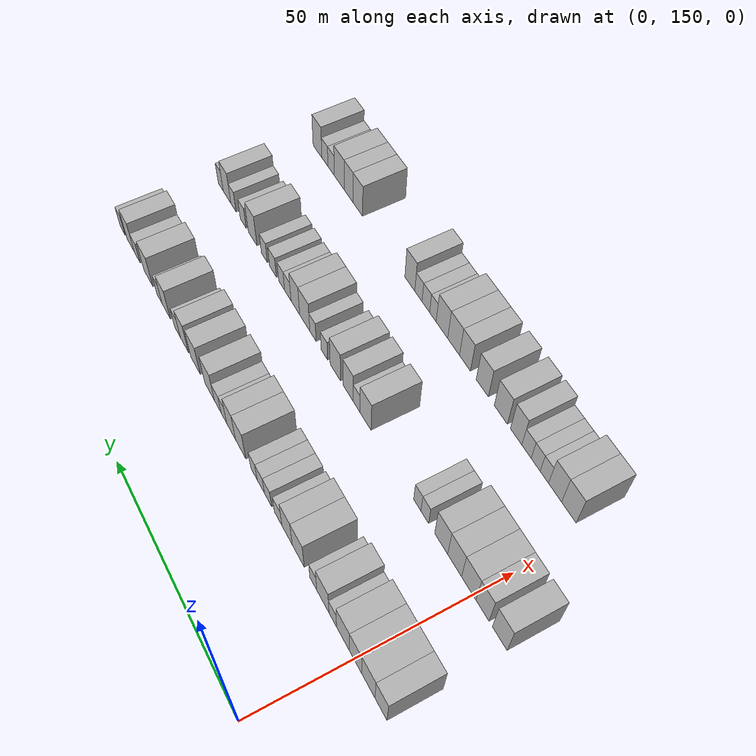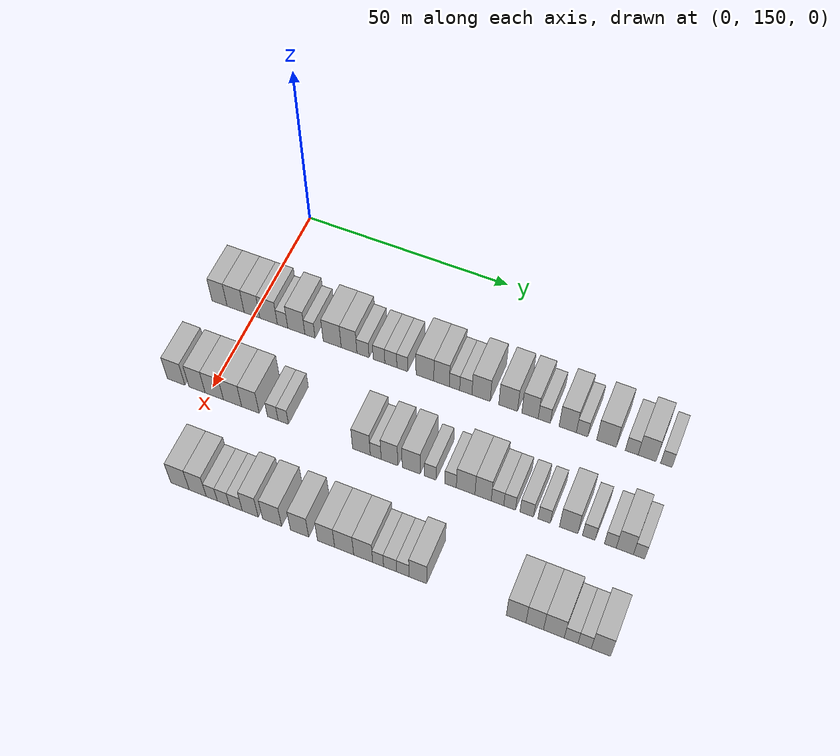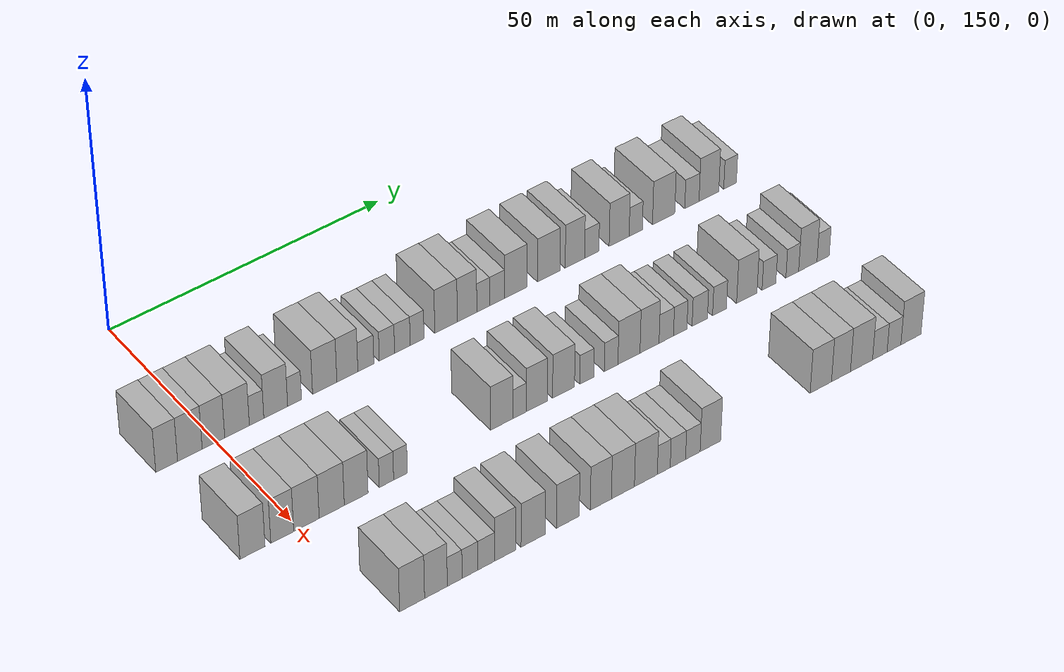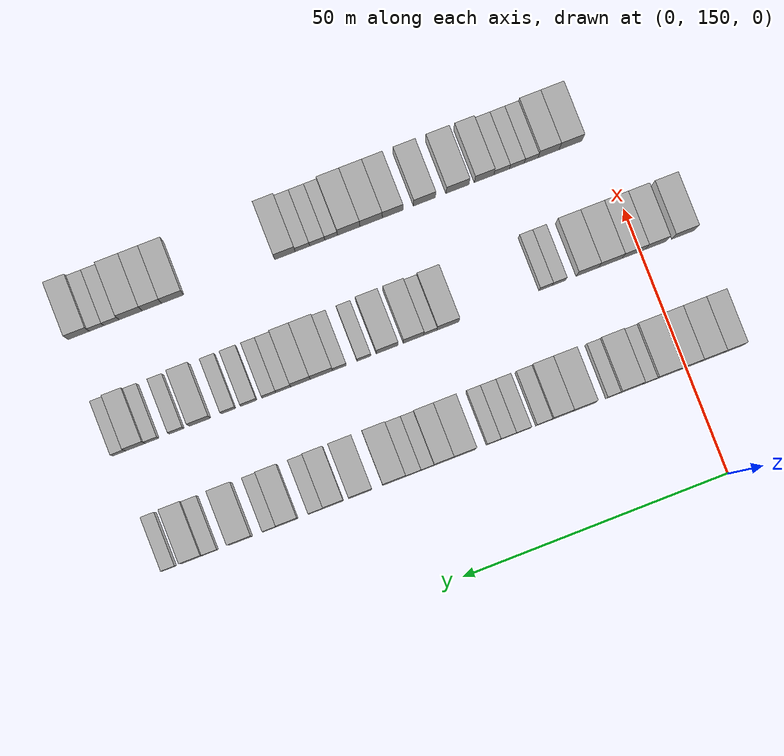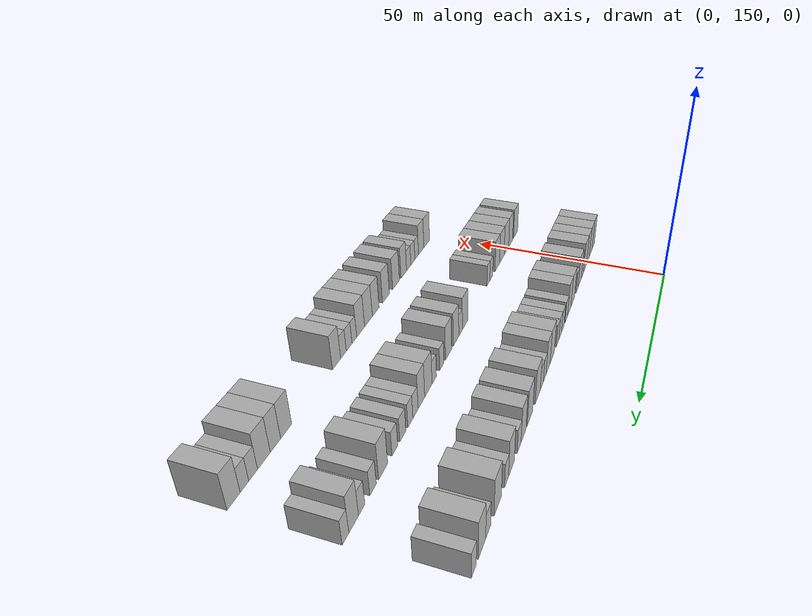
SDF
<sdf version="1.6">
 <world name="default">
  <model name="building_99">
   <static>1</static>
   <pose>25.0000 141.2825 0 0.000000 0.000000 0.000000</pose>
   <link name="link">
    <pose>0 0 4.50 0 0 0</pose>
    <collision name="collision"><geometry><box><size>10.0000 3.8132 9.0000</size></box></geometry></collision>
    <visual name="visual">
     <cast_shadows>0</cast_shadows>
     <geometry><box><size>10.0000 3.8132 9.0000</size></box></geometry>
     <material>
      <script>
       <uri>model://HANNAS_wall/materials/scripts</uri>
       <uri>model://HANNAS_wall/materials/textures</uri>
       <name>vrc/HANNAS_wall</name>
      </script>
     </material>
    </visual>
   </link>
  </model>
  <model name="building_100">
   <static>1</static>
   <pose>25.0000 145.3525 0 0.000000 0.000000 0.000000</pose>
   <link name="link">
    <pose>0 0 4.50 0 0 0</pose>
    <collision name="collision"><geometry><box><size>10.0000 4.3269 9.0000</size></box></geometry></collision>
    <visual name="visual">
     <cast_shadows>0</cast_shadows>
     <geometry><box><size>10.0000 4.3269 9.0000</size></box></geometry>
     <material>
      <script>
       <uri>model://HANNAS_wall/materials/scripts</uri>
       <uri>model://HANNAS_wall/materials/textures</uri>
       <name>vrc/HANNAS_wall</name>
      </script>
     </material>
    </visual>
   </link>
  </model>
  <model name="building_101">
   <static>1</static>
   <pose>25.0000 149.5108 0 0.000000 0.000000 0.000000</pose>
   <link name="link">
    <pose>0 0 4.50 0 0 0</pose>
    <collision name="collision"><geometry><box><size>10.0000 3.9896 9.0000</size></box></geometry></collision>
    <visual name="visual">
     <cast_shadows>0</cast_shadows>
     <geometry><box><size>10.0000 3.9896 9.0000</size></box></geometry>
     <material>
      <script>
       <uri>model://HANNAS_wall/materials/scripts</uri>
       <uri>model://HANNAS_wall/materials/textures</uri>
       <name>vrc/HANNAS_wall</name>
      </script>
     </material>
    </visual>
   </link>
  </model>
  <model name="building_102">
   <static>1</static>
   <pose>25.0000 153.6979 0 0.000000 0.000000 0.000000</pose>
   <link name="link">
    <pose>0 0 4.50 0 0 0</pose>
    <collision name="collision"><geometry><box><size>10.0000 4.3847 9.0000</size></box></geometry></collision>
    <visual name="visual">
     <cast_shadows>0</cast_shadows>
     <geometry><box><size>10.0000 4.3847 9.0000</size></box></geometry>
     <material>
      <script>
       <uri>model://HANNAS_wall/materials/scripts</uri>
       <uri>model://HANNAS_wall/materials/textures</uri>
       <name>vrc/HANNAS_wall</name>
      </script>
     </material>
    </visual>
   </link>
  </model>
  <model name="building_103">
   <static>1</static>
   <pose>25.0000 157.1865 0 0.000000 0.000000 0.000000</pose>
   <link name="link">
    <pose>0 0 3.00 0 0 0</pose>
    <collision name="collision"><geometry><box><size>10.0000 2.5923 6.0000</size></box></geometry></collision>
    <visual name="visual">
     <cast_shadows>0</cast_shadows>
     <geometry><box><size>10.0000 2.5923 6.0000</size></box></geometry>
     <material>
      <script>
       <uri>model://HANNAS_wall/materials/scripts</uri>
       <uri>model://HANNAS_wall/materials/textures</uri>
       <name>vrc/HANNAS_wall</name>
      </script>
     </material>
    </visual>
   </link>
  </model>
  <model name="building_104">
   <static>1</static>
   <pose>25.0000 160.6217 0 0.000000 0.000000 0.000000</pose>
   <link name="link">
    <pose>0 0 4.50 0 0 0</pose>
    <collision name="collision"><geometry><box><size>10.0000 4.2781 9.0000</size></box></geometry></collision>
    <visual name="visual">
     <cast_shadows>0</cast_shadows>
     <geometry><box><size>10.0000 4.2781 9.0000</size></box></geometry>
     <material>
      <script>
       <uri>model://HANNAS_wall/materials/scripts</uri>
       <uri>model://HANNAS_wall/materials/textures</uri>
       <name>vrc/HANNAS_wall</name>
      </script>
     </material>
    </visual>
   </link>
  </model>
  <model name="building_105">
   <static>1</static>
   <pose>25.0000 164.0125 0 0.000000 0.000000 0.000000</pose>
   <link name="link">
    <pose>0 0 3.00 0 0 0</pose>
    <collision name="collision"><geometry><box><size>10.0000 2.5037 6.0000</size></box></geometry></collision>
    <visual name="visual">
     <cast_shadows>0</cast_shadows>
     <geometry><box><size>10.0000 2.5037 6.0000</size></box></geometry>
     <material>
      <script>
       <uri>model://HANNAS_wall/materials/scripts</uri>
       <uri>model://HANNAS_wall/materials/textures</uri>
       <name>vrc/HANNAS_wall</name>
      </script>
     </material>
    </visual>
   </link>
  </model>
  <model name="building_106">
   <static>1</static>
   <pose>25.0000 169.4758 0 0.000000 0.000000 0.000000</pose>
   <link name="link">
    <pose>0 0 4.50 0 0 0</pose>
    <collision name="collision"><geometry><box><size>10.0000 4.4229 9.0000</size></box></geometry></collision>
    <visual name="visual">
     <cast_shadows>0</cast_shadows>
     <geometry><box><size>10.0000 4.4229 9.0000</size></box></geometry>
     <material>
      <script>
       <uri>model://HANNAS_wall/materials/scripts</uri>
       <uri>model://HANNAS_wall/materials/textures</uri>
       <name>vrc/HANNAS_wall</name>
      </script>
     </material>
    </visual>
   </link>
  </model>
  <model name="building_107">
   <static>1</static>
   <pose>25.0000 173.6117 0 0.000000 0.000000 0.000000</pose>
   <link name="link">
    <pose>0 0 4.50 0 0 0</pose>
    <collision name="collision"><geometry><box><size>10.0000 3.8489 9.0000</size></box></geometry></collision>
    <visual name="visual">
     <cast_shadows>0</cast_shadows>
     <geometry><box><size>10.0000 3.8489 9.0000</size></box></geometry>
     <material>
      <script>
       <uri>model://HANNAS_wall/materials/scripts</uri>
       <uri>model://HANNAS_wall/materials/textures</uri>
       <name>vrc/HANNAS_wall</name>
      </script>
     </material>
    </visual>
   </link>
  </model>
  <model name="building_108">
   <static>1</static>
   <pose>25.0000 177.0077 0 0.000000 0.000000 0.000000</pose>
   <link name="link">
    <pose>0 0 3.00 0 0 0</pose>
    <collision name="collision"><geometry><box><size>10.0000 2.9430 6.0000</size></box></geometry></collision>
    <visual name="visual">
     <cast_shadows>0</cast_shadows>
     <geometry><box><size>10.0000 2.9430 6.0000</size></box></geometry>
     <material>
      <script>
       <uri>model://HANNAS_wall/materials/scripts</uri>
       <uri>model://HANNAS_wall/materials/textures</uri>
       <name>vrc/HANNAS_wall</name>
      </script>
     </material>
    </visual>
   </link>
  </model>
  <model name="building_109">
   <static>1</static>
   <pose>25.0000 180.8945 0 0.000000 0.000000 0.000000</pose>
   <link name="link">
    <pose>0 0 3.00 0 0 0</pose>
    <collision name="collision"><geometry><box><size>10.0000 2.8308 6.0000</size></box></geometry></collision>
    <visual name="visual">
     <cast_shadows>0</cast_shadows>
     <geometry><box><size>10.0000 2.8308 6.0000</size></box></geometry>
     <material>
      <script>
       <uri>model://HANNAS_wall/materials/scripts</uri>
       <uri>model://HANNAS_wall/materials/textures</uri>
       <name>vrc/HANNAS_wall</name>
      </script>
     </material>
    </visual>
   </link>
  </model>
  <model name="building_110">
   <static>1</static>
   <pose>25.0000 183.7562 0 0.000000 0.000000 0.000000</pose>
   <link name="link">
    <pose>0 0 3.00 0 0 0</pose>
    <collision name="collision"><geometry><box><size>10.0000 2.8926 6.0000</size></box></geometry></collision>
    <visual name="visual">
     <cast_shadows>0</cast_shadows>
     <geometry><box><size>10.0000 2.8926 6.0000</size></box></geometry>
     <material>
      <script>
       <uri>model://HANNAS_wall/materials/scripts</uri>
       <uri>model://HANNAS_wall/materials/textures</uri>
       <name>vrc/HANNAS_wall</name>
      </script>
     </material>
    </visual>
   </link>
  </model>
  <model name="building_111">
   <static>1</static>
   <pose>25.0000 186.4954 0 0.000000 0.000000 0.000000</pose>
   <link name="link">
    <pose>0 0 3.00 0 0 0</pose>
    <collision name="collision"><geometry><box><size>10.0000 2.5856 6.0000</size></box></geometry></collision>
    <visual name="visual">
     <cast_shadows>0</cast_shadows>
     <geometry><box><size>10.0000 2.5856 6.0000</size></box></geometry>
     <material>
      <script>
       <uri>model://HANNAS_wall/materials/scripts</uri>
       <uri>model://HANNAS_wall/materials/textures</uri>
       <name>vrc/HANNAS_wall</name>
      </script>
     </material>
    </visual>
   </link>
  </model>
  <model name="building_112">
   <static>1</static>
   <pose>25.0000 191.9069 0 0.000000 0.000000 0.000000</pose>
   <link name="link">
    <pose>0 0 4.50 0 0 0</pose>
    <collision name="collision"><geometry><box><size>10.0000 4.2375 9.0000</size></box></geometry></collision>
    <visual name="visual">
     <cast_shadows>0</cast_shadows>
     <geometry><box><size>10.0000 4.2375 9.0000</size></box></geometry>
     <material>
      <script>
       <uri>model://HANNAS_wall/materials/scripts</uri>
       <uri>model://HANNAS_wall/materials/textures</uri>
       <name>vrc/HANNAS_wall</name>
      </script>
     </material>
    </visual>
   </link>
  </model>
  <model name="building_113">
   <static>1</static>
   <pose>25.0000 195.8690 0 0.000000 0.000000 0.000000</pose>
   <link name="link">
    <pose>0 0 4.50 0 0 0</pose>
    <collision name="collision"><geometry><box><size>10.0000 3.6868 9.0000</size></box></geometry></collision>
    <visual name="visual">
     <cast_shadows>0</cast_shadows>
     <geometry><box><size>10.0000 3.6868 9.0000</size></box></geometry>
     <material>
      <script>
       <uri>model://HANNAS_wall/materials/scripts</uri>
       <uri>model://HANNAS_wall/materials/textures</uri>
       <name>vrc/HANNAS_wall</name>
      </script>
     </material>
    </visual>
   </link>
  </model>
  <model name="building_114">
   <static>1</static>
   <pose>25.0000 198.9291 0 0.000000 0.000000 0.000000</pose>
   <link name="link">
    <pose>0 0 3.00 0 0 0</pose>
    <collision name="collision"><geometry><box><size>10.0000 2.4334 6.0000</size></box></geometry></collision>
    <visual name="visual">
     <cast_shadows>0</cast_shadows>
     <geometry><box><size>10.0000 2.4334 6.0000</size></box></geometry>
     <material>
      <script>
       <uri>model://HANNAS_wall/materials/scripts</uri>
       <uri>model://HANNAS_wall/materials/textures</uri>
       <name>vrc/HANNAS_wall</name>
      </script>
     </material>
    </visual>
   </link>
  </model>
  <model name="building_115">
   <static>1</static>
   <pose>25.0000 201.5881 0 0.000000 0.000000 0.000000</pose>
   <link name="link">
    <pose>0 0 3.00 0 0 0</pose>
    <collision name="collision"><geometry><box><size>10.0000 2.8847 6.0000</size></box></geometry></collision>
    <visual name="visual">
     <cast_shadows>0</cast_shadows>
     <geometry><box><size>10.0000 2.8847 6.0000</size></box></geometry>
     <material>
      <script>
       <uri>model://HANNAS_wall/materials/scripts</uri>
       <uri>model://HANNAS_wall/materials/textures</uri>
       <name>vrc/HANNAS_wall</name>
      </script>
     </material>
    </visual>
   </link>
  </model>
  <model name="building_116">
   <static>1</static>
   <pose>25.0000 205.1700 0 0.000000 0.000000 0.000000</pose>
   <link name="link">
    <pose>0 0 4.50 0 0 0</pose>
    <collision name="collision"><geometry><box><size>10.0000 4.2790 9.0000</size></box></geometry></collision>
    <visual name="visual">
     <cast_shadows>0</cast_shadows>
     <geometry><box><size>10.0000 4.2790 9.0000</size></box></geometry>
     <material>
      <script>
       <uri>model://HANNAS_wall/materials/scripts</uri>
       <uri>model://HANNAS_wall/materials/textures</uri>
       <name>vrc/HANNAS_wall</name>
      </script>
     </material>
    </visual>
   </link>
  </model>
  <model name="building_117">
   <static>1</static>
   <pose>25.0000 211.4765 0 0.000000 0.000000 0.000000</pose>
   <link name="link">
    <pose>0 0 4.50 0 0 0</pose>
    <collision name="collision"><geometry><box><size>10.0000 4.3340 9.0000</size></box></geometry></collision>
    <visual name="visual">
     <cast_shadows>0</cast_shadows>
     <geometry><box><size>10.0000 4.3340 9.0000</size></box></geometry>
     <material>
      <script>
       <uri>model://HANNAS_wall/materials/scripts</uri>
       <uri>model://HANNAS_wall/materials/textures</uri>
       <name>vrc/HANNAS_wall</name>
      </script>
     </material>
    </visual>
   </link>
  </model>
  <model name="building_118">
   <static>1</static>
   <pose>25.0000 216.5295 0 0.000000 0.000000 0.000000</pose>
   <link name="link">
    <pose>0 0 4.50 0 0 0</pose>
    <collision name="collision"><geometry><box><size>10.0000 3.7720 9.0000</size></box></geometry></collision>
    <visual name="visual">
     <cast_shadows>0</cast_shadows>
     <geometry><box><size>10.0000 3.7720 9.0000</size></box></geometry>
     <material>
      <script>
       <uri>model://HANNAS_wall/materials/scripts</uri>
       <uri>model://HANNAS_wall/materials/textures</uri>
       <name>vrc/HANNAS_wall</name>
      </script>
     </material>
    </visual>
   </link>
  </model>
  <model name="building_119">
   <static>1</static>
   <pose>25.0000 219.8088 0 0.000000 0.000000 0.000000</pose>
   <link name="link">
    <pose>0 0 3.00 0 0 0</pose>
    <collision name="collision"><geometry><box><size>10.0000 2.7865 6.0000</size></box></geometry></collision>
    <visual name="visual">
     <cast_shadows>0</cast_shadows>
     <geometry><box><size>10.0000 2.7865 6.0000</size></box></geometry>
     <material>
      <script>
       <uri>model://HANNAS_wall/materials/scripts</uri>
       <uri>model://HANNAS_wall/materials/textures</uri>
       <name>vrc/HANNAS_wall</name>
      </script>
     </material>
    </visual>
   </link>
  </model>
  <model name="building_120">
   <static>1</static>
   <pose>25.0000 225.1686 0 0.000000 0.000000 0.000000</pose>
   <link name="link">
    <pose>0 0 4.50 0 0 0</pose>
    <collision name="collision"><geometry><box><size>10.0000 3.9332 9.0000</size></box></geometry></collision>
    <visual name="visual">
     <cast_shadows>0</cast_shadows>
     <geometry><box><size>10.0000 3.9332 9.0000</size></box></geometry>
     <material>
      <script>
       <uri>model://HANNAS_wall/materials/scripts</uri>
       <uri>model://HANNAS_wall/materials/textures</uri>
       <name>vrc/HANNAS_wall</name>
      </script>
     </material>
    </visual>
   </link>
  </model>
  <model name="building_121">
   <static>1</static>
   <pose>25.0000 228.4403 0 0.000000 0.000000 0.000000</pose>
   <link name="link">
    <pose>0 0 3.00 0 0 0</pose>
    <collision name="collision"><geometry><box><size>10.0000 2.6103 6.0000</size></box></geometry></collision>
    <visual name="visual">
     <cast_shadows>0</cast_shadows>
     <geometry><box><size>10.0000 2.6103 6.0000</size></box></geometry>
     <material>
      <script>
       <uri>model://HANNAS_wall/materials/scripts</uri>
       <uri>model://HANNAS_wall/materials/textures</uri>
       <name>vrc/HANNAS_wall</name>
      </script>
     </material>
    </visual>
   </link>
  </model>
  <model name="building_122">
   <static>1</static>
   <pose>25.0000 233.9627 0 0.000000 0.000000 0.000000</pose>
   <link name="link">
    <pose>0 0 4.50 0 0 0</pose>
    <collision name="collision"><geometry><box><size>10.0000 4.4344 9.0000</size></box></geometry></collision>
    <visual name="visual">
     <cast_shadows>0</cast_shadows>
     <geometry><box><size>10.0000 4.4344 9.0000</size></box></geometry>
     <material>
      <script>
       <uri>model://HANNAS_wall/materials/scripts</uri>
       <uri>model://HANNAS_wall/materials/textures</uri>
       <name>vrc/HANNAS_wall</name>
      </script>
     </material>
    </visual>
   </link>
  </model>
  <model name="building_123">
   <static>1</static>
   <pose>25.0000 239.6098 0 0.000000 0.000000 0.000000</pose>
   <link name="link">
    <pose>0 0 3.00 0 0 0</pose>
    <collision name="collision"><geometry><box><size>10.0000 2.8599 6.0000</size></box></geometry></collision>
    <visual name="visual">
     <cast_shadows>0</cast_shadows>
     <geometry><box><size>10.0000 2.8599 6.0000</size></box></geometry>
     <material>
      <script>
       <uri>model://HANNAS_wall/materials/scripts</uri>
       <uri>model://HANNAS_wall/materials/textures</uri>
       <name>vrc/HANNAS_wall</name>
      </script>
     </material>
    </visual>
   </link>
  </model>
  <model name="building_124">
   <static>1</static>
   <pose>25.0000 243.0283 0 0.000000 0.000000 0.000000</pose>
   <link name="link">
    <pose>0 0 4.50 0 0 0</pose>
    <collision name="collision"><geometry><box><size>10.0000 3.9770 9.0000</size></box></geometry></collision>
    <visual name="visual">
     <cast_shadows>0</cast_shadows>
     <geometry><box><size>10.0000 3.9770 9.0000</size></box></geometry>
     <material>
      <script>
       <uri>model://HANNAS_wall/materials/scripts</uri>
       <uri>model://HANNAS_wall/materials/textures</uri>
       <name>vrc/HANNAS_wall</name>
      </script>
     </material>
    </visual>
   </link>
  </model>
  <model name="building_125">
   <static>1</static>
   <pose>25.0000 247.2983 0 0.000000 0.000000 0.000000</pose>
   <link name="link">
    <pose>0 0 3.00 0 0 0</pose>
    <collision name="collision"><geometry><box><size>10.0000 2.5631 6.0000</size></box></geometry></collision>
    <visual name="visual">
     <cast_shadows>0</cast_shadows>
     <geometry><box><size>10.0000 2.5631 6.0000</size></box></geometry>
     <material>
      <script>
       <uri>model://HANNAS_wall/materials/scripts</uri>
       <uri>model://HANNAS_wall/materials/textures</uri>
       <name>vrc/HANNAS_wall</name>
      </script>
     </material>
    </visual>
   </link>
  </model>
  <model name="building_216">
   <static>1</static>
   <pose>47.0000 141.8956 0 0.000000 0.000000 0.000000</pose>
   <link name="link">
    <pose>0 0 4.50 0 0 0</pose>
    <collision name="collision"><geometry><box><size>10.0000 4.3560 9.0000</size></box></geometry></collision>
    <visual name="visual">
     <cast_shadows>0</cast_shadows>
     <geometry><box><size>10.0000 4.3560 9.0000</size></box></geometry>
     <material>
      <script>
       <uri>model://HANNAS_wall/materials/scripts</uri>
       <uri>model://HANNAS_wall/materials/textures</uri>
       <name>vrc/HANNAS_wall</name>
      </script>
     </material>
    </visual>
   </link>
  </model>
  <model name="building_217">
   <static>1</static>
   <pose>47.0000 147.0660 0 0.000000 0.000000 0.000000</pose>
   <link name="link">
    <pose>0 0 4.50 0 0 0</pose>
    <collision name="collision"><geometry><box><size>10.0000 3.9848 9.0000</size></box></geometry></collision>
    <visual name="visual">
     <cast_shadows>0</cast_shadows>
     <geometry><box><size>10.0000 3.9848 9.0000</size></box></geometry>
     <material>
      <script>
       <uri>model://HANNAS_wall/materials/scripts</uri>
       <uri>model://HANNAS_wall/materials/textures</uri>
       <name>vrc/HANNAS_wall</name>
      </script>
     </material>
    </visual>
   </link>
  </model>
  <model name="building_218">
   <static>1</static>
   <pose>47.0000 151.2968 0 0.000000 0.000000 0.000000</pose>
   <link name="link">
    <pose>0 0 4.50 0 0 0</pose>
    <collision name="collision"><geometry><box><size>10.0000 4.4767 9.0000</size></box></geometry></collision>
    <visual name="visual">
     <cast_shadows>0</cast_shadows>
     <geometry><box><size>10.0000 4.4767 9.0000</size></box></geometry>
     <material>
      <script>
       <uri>model://HANNAS_wall/materials/scripts</uri>
       <uri>model://HANNAS_wall/materials/textures</uri>
       <name>vrc/HANNAS_wall</name>
      </script>
     </material>
    </visual>
   </link>
  </model>
  <model name="building_219">
   <static>1</static>
   <pose>47.0000 155.7548 0 0.000000 0.000000 0.000000</pose>
   <link name="link">
    <pose>0 0 4.50 0 0 0</pose>
    <collision name="collision"><geometry><box><size>10.0000 4.4392 9.0000</size></box></geometry></collision>
    <visual name="visual">
     <cast_shadows>0</cast_shadows>
     <geometry><box><size>10.0000 4.4392 9.0000</size></box></geometry>
     <material>
      <script>
       <uri>model://HANNAS_wall/materials/scripts</uri>
       <uri>model://HANNAS_wall/materials/textures</uri>
       <name>vrc/HANNAS_wall</name>
      </script>
     </material>
    </visual>
   </link>
  </model>
  <model name="building_220">
   <static>1</static>
   <pose>47.0000 160.0873 0 0.000000 0.000000 0.000000</pose>
   <link name="link">
    <pose>0 0 4.50 0 0 0</pose>
    <collision name="collision"><geometry><box><size>10.0000 4.2258 9.0000</size></box></geometry></collision>
    <visual name="visual">
     <cast_shadows>0</cast_shadows>
     <geometry><box><size>10.0000 4.2258 9.0000</size></box></geometry>
     <material>
      <script>
       <uri>model://HANNAS_wall/materials/scripts</uri>
       <uri>model://HANNAS_wall/materials/textures</uri>
       <name>vrc/HANNAS_wall</name>
      </script>
     </material>
    </visual>
   </link>
  </model>
  <model name="building_221">
   <static>1</static>
   <pose>47.0000 165.4846 0 0.000000 0.000000 0.000000</pose>
   <link name="link">
    <pose>0 0 3.00 0 0 0</pose>
    <collision name="collision"><geometry><box><size>10.0000 2.5687 6.0000</size></box></geometry></collision>
    <visual name="visual">
     <cast_shadows>0</cast_shadows>
     <geometry><box><size>10.0000 2.5687 6.0000</size></box></geometry>
     <material>
      <script>
       <uri>model://HANNAS_wall/materials/scripts</uri>
       <uri>model://HANNAS_wall/materials/textures</uri>
       <name>vrc/HANNAS_wall</name>
      </script>
     </material>
    </visual>
   </link>
  </model>
  <model name="building_222">
   <static>1</static>
   <pose>47.0000 168.0032 0 0.000000 0.000000 0.000000</pose>
   <link name="link">
    <pose>0 0 3.00 0 0 0</pose>
    <collision name="collision"><geometry><box><size>10.0000 2.4686 6.0000</size></box></geometry></collision>
    <visual name="visual">
     <cast_shadows>0</cast_shadows>
     <geometry><box><size>10.0000 2.4686 6.0000</size></box></geometry>
     <material>
      <script>
       <uri>model://HANNAS_wall/materials/scripts</uri>
       <uri>model://HANNAS_wall/materials/textures</uri>
       <name>vrc/HANNAS_wall</name>
      </script>
     </material>
    </visual>
   </link>
  </model>
  <model name="building_223">
   <static>1</static>
   <pose>47.0000 186.4494 0 0.000000 0.000000 0.000000</pose>
   <link name="link">
    <pose>0 0 4.50 0 0 0</pose>
    <collision name="collision"><geometry><box><size>10.0000 4.1412 9.0000</size></box></geometry></collision>
    <visual name="visual">
     <cast_shadows>0</cast_shadows>
     <geometry><box><size>10.0000 4.1412 9.0000</size></box></geometry>
     <material>
      <script>
       <uri>model://HANNAS_wall/materials/scripts</uri>
       <uri>model://HANNAS_wall/materials/textures</uri>
       <name>vrc/HANNAS_wall</name>
      </script>
     </material>
    </visual>
   </link>
  </model>
  <model name="building_224">
   <static>1</static>
   <pose>47.0000 189.7735 0 0.000000 0.000000 0.000000</pose>
   <link name="link">
    <pose>0 0 3.00 0 0 0</pose>
    <collision name="collision"><geometry><box><size>10.0000 2.5070 6.0000</size></box></geometry></collision>
    <visual name="visual">
     <cast_shadows>0</cast_shadows>
     <geometry><box><size>10.0000 2.5070 6.0000</size></box></geometry>
     <material>
      <script>
       <uri>model://HANNAS_wall/materials/scripts</uri>
       <uri>model://HANNAS_wall/materials/textures</uri>
       <name>vrc/HANNAS_wall</name>
      </script>
     </material>
    </visual>
   </link>
  </model>
  <model name="building_225">
   <static>1</static>
   <pose>47.0000 192.9544 0 0.000000 0.000000 0.000000</pose>
   <link name="link">
    <pose>0 0 4.50 0 0 0</pose>
    <collision name="collision"><geometry><box><size>10.0000 3.8548 9.0000</size></box></geometry></collision>
    <visual name="visual">
     <cast_shadows>0</cast_shadows>
     <geometry><box><size>10.0000 3.8548 9.0000</size></box></geometry>
     <material>
      <script>
       <uri>model://HANNAS_wall/materials/scripts</uri>
       <uri>model://HANNAS_wall/materials/textures</uri>
       <name>vrc/HANNAS_wall</name>
      </script>
     </material>
    </visual>
   </link>
  </model>
  <model name="building_226">
   <static>1</static>
   <pose>47.0000 197.9380 0 0.000000 0.000000 0.000000</pose>
   <link name="link">
    <pose>0 0 4.50 0 0 0</pose>
    <collision name="collision"><geometry><box><size>10.0000 4.1125 9.0000</size></box></geometry></collision>
    <visual name="visual">
     <cast_shadows>0</cast_shadows>
     <geometry><box><size>10.0000 4.1125 9.0000</size></box></geometry>
     <material>
      <script>
       <uri>model://HANNAS_wall/materials/scripts</uri>
       <uri>model://HANNAS_wall/materials/textures</uri>
       <name>vrc/HANNAS_wall</name>
      </script>
     </material>
    </visual>
   </link>
  </model>
  <model name="building_227">
   <static>1</static>
   <pose>47.0000 202.3054 0 0.000000 0.000000 0.000000</pose>
   <link name="link">
    <pose>0 0 3.00 0 0 0</pose>
    <collision name="collision"><geometry><box><size>10.0000 2.6223 6.0000</size></box></geometry></collision>
    <visual name="visual">
     <cast_shadows>0</cast_shadows>
     <geometry><box><size>10.0000 2.6223 6.0000</size></box></geometry>
     <material>
      <script>
       <uri>model://HANNAS_wall/materials/scripts</uri>
       <uri>model://HANNAS_wall/materials/textures</uri>
       <name>vrc/HANNAS_wall</name>
      </script>
     </material>
    </visual>
   </link>
  </model>
  <model name="building_228">
   <static>1</static>
   <pose>47.0000 206.9158 0 0.000000 0.000000 0.000000</pose>
   <link name="link">
    <pose>0 0 3.00 0 0 0</pose>
    <collision name="collision"><geometry><box><size>10.0000 2.5986 6.0000</size></box></geometry></collision>
    <visual name="visual">
     <cast_shadows>0</cast_shadows>
     <geometry><box><size>10.0000 2.5986 6.0000</size></box></geometry>
     <material>
      <script>
       <uri>model://HANNAS_wall/materials/scripts</uri>
       <uri>model://HANNAS_wall/materials/textures</uri>
       <name>vrc/HANNAS_wall</name>
      </script>
     </material>
    </visual>
   </link>
  </model>
  <model name="building_229">
   <static>1</static>
   <pose>47.0000 210.3156 0 0.000000 0.000000 0.000000</pose>
   <link name="link">
    <pose>0 0 4.50 0 0 0</pose>
    <collision name="collision"><geometry><box><size>10.0000 4.2009 9.0000</size></box></geometry></collision>
    <visual name="visual">
     <cast_shadows>0</cast_shadows>
     <geometry><box><size>10.0000 4.2009 9.0000</size></box></geometry>
     <material>
      <script>
       <uri>model://HANNAS_wall/materials/scripts</uri>
       <uri>model://HANNAS_wall/materials/textures</uri>
       <name>vrc/HANNAS_wall</name>
      </script>
     </material>
    </visual>
   </link>
  </model>
  <model name="building_230">
   <static>1</static>
   <pose>47.0000 214.2436 0 0.000000 0.000000 0.000000</pose>
   <link name="link">
    <pose>0 0 4.50 0 0 0</pose>
    <collision name="collision"><geometry><box><size>10.0000 3.6549 9.0000</size></box></geometry></collision>
    <visual name="visual">
     <cast_shadows>0</cast_shadows>
     <geometry><box><size>10.0000 3.6549 9.0000</size></box></geometry>
     <material>
      <script>
       <uri>model://HANNAS_wall/materials/scripts</uri>
       <uri>model://HANNAS_wall/materials/textures</uri>
       <name>vrc/HANNAS_wall</name>
      </script>
     </material>
    </visual>
   </link>
  </model>
  <model name="building_231">
   <static>1</static>
   <pose>47.0000 217.4649 0 0.000000 0.000000 0.000000</pose>
   <link name="link">
    <pose>0 0 3.00 0 0 0</pose>
    <collision name="collision"><geometry><box><size>10.0000 2.7879 6.0000</size></box></geometry></collision>
    <visual name="visual">
     <cast_shadows>0</cast_shadows>
     <geometry><box><size>10.0000 2.7879 6.0000</size></box></geometry>
     <material>
      <script>
       <uri>model://HANNAS_wall/materials/scripts</uri>
       <uri>model://HANNAS_wall/materials/textures</uri>
       <name>vrc/HANNAS_wall</name>
      </script>
     </material>
    </visual>
   </link>
  </model>
  <model name="building_232">
   <static>1</static>
   <pose>47.0000 220.1577 0 0.000000 0.000000 0.000000</pose>
   <link name="link">
    <pose>0 0 3.00 0 0 0</pose>
    <collision name="collision"><geometry><box><size>10.0000 2.5976 6.0000</size></box></geometry></collision>
    <visual name="visual">
     <cast_shadows>0</cast_shadows>
     <geometry><box><size>10.0000 2.5976 6.0000</size></box></geometry>
     <material>
      <script>
       <uri>model://HANNAS_wall/materials/scripts</uri>
       <uri>model://HANNAS_wall/materials/textures</uri>
       <name>vrc/HANNAS_wall</name>
      </script>
     </material>
    </visual>
   </link>
  </model>
  <model name="building_233">
   <static>1</static>
   <pose>47.0000 223.9513 0 0.000000 0.000000 0.000000</pose>
   <link name="link">
    <pose>0 0 3.00 0 0 0</pose>
    <collision name="collision"><geometry><box><size>10.0000 2.9897 6.0000</size></box></geometry></collision>
    <visual name="visual">
     <cast_shadows>0</cast_shadows>
     <geometry><box><size>10.0000 2.9897 6.0000</size></box></geometry>
     <material>
      <script>
       <uri>model://HANNAS_wall/materials/scripts</uri>
       <uri>model://HANNAS_wall/materials/textures</uri>
       <name>vrc/HANNAS_wall</name>
      </script>
     </material>
    </visual>
   </link>
  </model>
  <model name="building_234">
   <static>1</static>
   <pose>47.0000 227.7997 0 0.000000 0.000000 0.000000</pose>
   <link name="link">
    <pose>0 0 3.00 0 0 0</pose>
    <collision name="collision"><geometry><box><size>10.0000 2.7071 6.0000</size></box></geometry></collision>
    <visual name="visual">
     <cast_shadows>0</cast_shadows>
     <geometry><box><size>10.0000 2.7071 6.0000</size></box></geometry>
     <material>
      <script>
       <uri>model://HANNAS_wall/materials/scripts</uri>
       <uri>model://HANNAS_wall/materials/textures</uri>
       <name>vrc/HANNAS_wall</name>
      </script>
     </material>
    </visual>
   </link>
  </model>
  <model name="building_235">
   <static>1</static>
   <pose>47.0000 233.1592 0 0.000000 0.000000 0.000000</pose>
   <link name="link">
    <pose>0 0 4.50 0 0 0</pose>
    <collision name="collision"><geometry><box><size>10.0000 4.0118 9.0000</size></box></geometry></collision>
    <visual name="visual">
     <cast_shadows>0</cast_shadows>
     <geometry><box><size>10.0000 4.0118 9.0000</size></box></geometry>
     <material>
      <script>
       <uri>model://HANNAS_wall/materials/scripts</uri>
       <uri>model://HANNAS_wall/materials/textures</uri>
       <name>vrc/HANNAS_wall</name>
      </script>
     </material>
    </visual>
   </link>
  </model>
  <model name="building_236">
   <static>1</static>
   <pose>47.0000 237.5357 0 0.000000 0.000000 0.000000</pose>
   <link name="link">
    <pose>0 0 3.00 0 0 0</pose>
    <collision name="collision"><geometry><box><size>10.0000 2.7413 6.0000</size></box></geometry></collision>
    <visual name="visual">
     <cast_shadows>0</cast_shadows>
     <geometry><box><size>10.0000 2.7413 6.0000</size></box></geometry>
     <material>
      <script>
       <uri>model://HANNAS_wall/materials/scripts</uri>
       <uri>model://HANNAS_wall/materials/textures</uri>
       <name>vrc/HANNAS_wall</name>
      </script>
     </material>
    </visual>
   </link>
  </model>
  <model name="building_237">
   <static>1</static>
   <pose>47.0000 242.1757 0 0.000000 0.000000 0.000000</pose>
   <link name="link">
    <pose>0 0 3.00 0 0 0</pose>
    <collision name="collision"><geometry><box><size>10.0000 2.5387 6.0000</size></box></geometry></collision>
    <visual name="visual">
     <cast_shadows>0</cast_shadows>
     <geometry><box><size>10.0000 2.5387 6.0000</size></box></geometry>
     <material>
      <script>
       <uri>model://HANNAS_wall/materials/scripts</uri>
       <uri>model://HANNAS_wall/materials/textures</uri>
       <name>vrc/HANNAS_wall</name>
      </script>
     </material>
    </visual>
   </link>
  </model>
  <model name="building_238">
   <static>1</static>
   <pose>47.0000 245.2826 0 0.000000 0.000000 0.000000</pose>
   <link name="link">
    <pose>0 0 4.50 0 0 0</pose>
    <collision name="collision"><geometry><box><size>10.0000 3.6752 9.0000</size></box></geometry></collision>
    <visual name="visual">
     <cast_shadows>0</cast_shadows>
     <geometry><box><size>10.0000 3.6752 9.0000</size></box></geometry>
     <material>
      <script>
       <uri>model://HANNAS_wall/materials/scripts</uri>
       <uri>model://HANNAS_wall/materials/textures</uri>
       <name>vrc/HANNAS_wall</name>
      </script>
     </material>
    </visual>
   </link>
  </model>
  <model name="building_239">
   <static>1</static>
   <pose>47.0000 248.3482 0 0.000000 0.000000 0.000000</pose>
   <link name="link">
    <pose>0 0 3.00 0 0 0</pose>
    <collision name="collision"><geometry><box><size>10.0000 2.4560 6.0000</size></box></geometry></collision>
    <visual name="visual">
     <cast_shadows>0</cast_shadows>
     <geometry><box><size>10.0000 2.4560 6.0000</size></box></geometry>
     <material>
      <script>
       <uri>model://HANNAS_wall/materials/scripts</uri>
       <uri>model://HANNAS_wall/materials/textures</uri>
       <name>vrc/HANNAS_wall</name>
      </script>
     </material>
    </visual>
   </link>
  </model>
  <model name="building_338">
   <static>1</static>
   <pose>69.0000 154.6162 0 0.000000 0.000000 0.000000</pose>
   <link name="link">
    <pose>0 0 4.50 0 0 0</pose>
    <collision name="collision"><geometry><box><size>10.0000 4.3565 9.0000</size></box></geometry></collision>
    <visual name="visual">
     <cast_shadows>0</cast_shadows>
     <geometry><box><size>10.0000 4.3565 9.0000</size></box></geometry>
     <material>
      <script>
       <uri>model://HANNAS_wall/materials/scripts</uri>
       <uri>model://HANNAS_wall/materials/textures</uri>
       <name>vrc/HANNAS_wall</name>
      </script>
     </material>
    </visual>
   </link>
  </model>
  <model name="building_339">
   <static>1</static>
   <pose>69.0000 158.7885 0 0.000000 0.000000 0.000000</pose>
   <link name="link">
    <pose>0 0 4.50 0 0 0</pose>
    <collision name="collision"><geometry><box><size>10.0000 3.9881 9.0000</size></box></geometry></collision>
    <visual name="visual">
     <cast_shadows>0</cast_shadows>
     <geometry><box><size>10.0000 3.9881 9.0000</size></box></geometry>
     <material>
      <script>
       <uri>model://HANNAS_wall/materials/scripts</uri>
       <uri>model://HANNAS_wall/materials/textures</uri>
       <name>vrc/HANNAS_wall</name>
      </script>
     </material>
    </visual>
   </link>
  </model>
  <model name="building_340">
   <static>1</static>
   <pose>69.0000 162.0887 0 0.000000 0.000000 0.000000</pose>
   <link name="link">
    <pose>0 0 3.00 0 0 0</pose>
    <collision name="collision"><geometry><box><size>10.0000 2.6122 6.0000</size></box></geometry></collision>
    <visual name="visual">
     <cast_shadows>0</cast_shadows>
     <geometry><box><size>10.0000 2.6122 6.0000</size></box></geometry>
     <material>
      <script>
       <uri>model://HANNAS_wall/materials/scripts</uri>
       <uri>model://HANNAS_wall/materials/textures</uri>
       <name>vrc/HANNAS_wall</name>
      </script>
     </material>
    </visual>
   </link>
  </model>
  <model name="building_341">
   <static>1</static>
   <pose>69.0000 164.7992 0 0.000000 0.000000 0.000000</pose>
   <link name="link">
    <pose>0 0 3.00 0 0 0</pose>
    <collision name="collision"><geometry><box><size>10.0000 2.8089 6.0000</size></box></geometry></collision>
    <visual name="visual">
     <cast_shadows>0</cast_shadows>
     <geometry><box><size>10.0000 2.8089 6.0000</size></box></geometry>
     <material>
      <script>
       <uri>model://HANNAS_wall/materials/scripts</uri>
       <uri>model://HANNAS_wall/materials/textures</uri>
       <name>vrc/HANNAS_wall</name>
      </script>
     </material>
    </visual>
   </link>
  </model>
  <model name="building_342">
   <static>1</static>
   <pose>69.0000 167.6967 0 0.000000 0.000000 0.000000</pose>
   <link name="link">
    <pose>0 0 3.00 0 0 0</pose>
    <collision name="collision"><geometry><box><size>10.0000 2.9862 6.0000</size></box></geometry></collision>
    <visual name="visual">
     <cast_shadows>0</cast_shadows>
     <geometry><box><size>10.0000 2.9862 6.0000</size></box></geometry>
     <material>
      <script>
       <uri>model://HANNAS_wall/materials/scripts</uri>
       <uri>model://HANNAS_wall/materials/textures</uri>
       <name>vrc/HANNAS_wall</name>
      </script>
     </material>
    </visual>
   </link>
  </model>
  <model name="building_343">
   <static>1</static>
   <pose>69.0000 171.0378 0 0.000000 0.000000 0.000000</pose>
   <link name="link">
    <pose>0 0 4.50 0 0 0</pose>
    <collision name="collision"><geometry><box><size>10.0000 3.6959 9.0000</size></box></geometry></collision>
    <visual name="visual">
     <cast_shadows>0</cast_shadows>
     <geometry><box><size>10.0000 3.6959 9.0000</size></box></geometry>
     <material>
      <script>
       <uri>model://HANNAS_wall/materials/scripts</uri>
       <uri>model://HANNAS_wall/materials/textures</uri>
       <name>vrc/HANNAS_wall</name>
      </script>
     </material>
    </visual>
   </link>
  </model>
  <model name="building_344">
   <static>1</static>
   <pose>69.0000 176.0731 0 0.000000 0.000000 0.000000</pose>
   <link name="link">
    <pose>0 0 4.50 0 0 0</pose>
    <collision name="collision"><geometry><box><size>10.0000 4.3747 9.0000</size></box></geometry></collision>
    <visual name="visual">
     <cast_shadows>0</cast_shadows>
     <geometry><box><size>10.0000 4.3747 9.0000</size></box></geometry>
     <material>
      <script>
       <uri>model://HANNAS_wall/materials/scripts</uri>
       <uri>model://HANNAS_wall/materials/textures</uri>
       <name>vrc/HANNAS_wall</name>
      </script>
     </material>
    </visual>
   </link>
  </model>
  <model name="building_345">
   <static>1</static>
   <pose>69.0000 182.3365 0 0.000000 0.000000 0.000000</pose>
   <link name="link">
    <pose>0 0 4.50 0 0 0</pose>
    <collision name="collision"><geometry><box><size>10.0000 4.1521 9.0000</size></box></geometry></collision>
    <visual name="visual">
     <cast_shadows>0</cast_shadows>
     <geometry><box><size>10.0000 4.1521 9.0000</size></box></geometry>
     <material>
      <script>
       <uri>model://HANNAS_wall/materials/scripts</uri>
       <uri>model://HANNAS_wall/materials/textures</uri>
       <name>vrc/HANNAS_wall</name>
      </script>
     </material>
    </visual>
   </link>
  </model>
  <model name="building_346">
   <static>1</static>
   <pose>69.0000 188.3488 0 0.000000 0.000000 0.000000</pose>
   <link name="link">
    <pose>0 0 4.50 0 0 0</pose>
    <collision name="collision"><geometry><box><size>10.0000 3.8725 9.0000</size></box></geometry></collision>
    <visual name="visual">
     <cast_shadows>0</cast_shadows>
     <geometry><box><size>10.0000 3.8725 9.0000</size></box></geometry>
     <material>
      <script>
       <uri>model://HANNAS_wall/materials/scripts</uri>
       <uri>model://HANNAS_wall/materials/textures</uri>
       <name>vrc/HANNAS_wall</name>
      </script>
     </material>
    </visual>
   </link>
  </model>
  <model name="building_347">
   <static>1</static>
   <pose>69.0000 192.4094 0 0.000000 0.000000 0.000000</pose>
   <link name="link">
    <pose>0 0 4.50 0 0 0</pose>
    <collision name="collision"><geometry><box><size>10.0000 4.2486 9.0000</size></box></geometry></collision>
    <visual name="visual">
     <cast_shadows>0</cast_shadows>
     <geometry><box><size>10.0000 4.2486 9.0000</size></box></geometry>
     <material>
      <script>
       <uri>model://HANNAS_wall/materials/scripts</uri>
       <uri>model://HANNAS_wall/materials/textures</uri>
       <name>vrc/HANNAS_wall</name>
      </script>
     </material>
    </visual>
   </link>
  </model>
  <model name="building_348">
   <static>1</static>
   <pose>69.0000 196.6541 0 0.000000 0.000000 0.000000</pose>
   <link name="link">
    <pose>0 0 4.50 0 0 0</pose>
    <collision name="collision"><geometry><box><size>10.0000 4.2407 9.0000</size></box></geometry></collision>
    <visual name="visual">
     <cast_shadows>0</cast_shadows>
     <geometry><box><size>10.0000 4.2407 9.0000</size></box></geometry>
     <material>
      <script>
       <uri>model://HANNAS_wall/materials/scripts</uri>
       <uri>model://HANNAS_wall/materials/textures</uri>
       <name>vrc/HANNAS_wall</name>
      </script>
     </material>
    </visual>
   </link>
  </model>
  <model name="building_349">
   <static>1</static>
   <pose>69.0000 199.9798 0 0.000000 0.000000 0.000000</pose>
   <link name="link">
    <pose>0 0 3.00 0 0 0</pose>
    <collision name="collision"><geometry><box><size>10.0000 2.4107 6.0000</size></box></geometry></collision>
    <visual name="visual">
     <cast_shadows>0</cast_shadows>
     <geometry><box><size>10.0000 2.4107 6.0000</size></box></geometry>
     <material>
      <script>
       <uri>model://HANNAS_wall/materials/scripts</uri>
       <uri>model://HANNAS_wall/materials/textures</uri>
       <name>vrc/HANNAS_wall</name>
      </script>
     </material>
    </visual>
   </link>
  </model>
  <model name="building_350">
   <static>1</static>
   <pose>69.0000 202.6165 0 0.000000 0.000000 0.000000</pose>
   <link name="link">
    <pose>0 0 3.00 0 0 0</pose>
    <collision name="collision"><geometry><box><size>10.0000 2.8627 6.0000</size></box></geometry></collision>
    <visual name="visual">
     <cast_shadows>0</cast_shadows>
     <geometry><box><size>10.0000 2.8627 6.0000</size></box></geometry>
     <material>
      <script>
       <uri>model://HANNAS_wall/materials/scripts</uri>
       <uri>model://HANNAS_wall/materials/textures</uri>
       <name>vrc/HANNAS_wall</name>
      </script>
     </material>
    </visual>
   </link>
  </model>
  <model name="building_351">
   <static>1</static>
   <pose>69.0000 205.4180 0 0.000000 0.000000 0.000000</pose>
   <link name="link">
    <pose>0 0 3.00 0 0 0</pose>
    <collision name="collision"><geometry><box><size>10.0000 2.7403 6.0000</size></box></geometry></collision>
    <visual name="visual">
     <cast_shadows>0</cast_shadows>
     <geometry><box><size>10.0000 2.7403 6.0000</size></box></geometry>
     <material>
      <script>
       <uri>model://HANNAS_wall/materials/scripts</uri>
       <uri>model://HANNAS_wall/materials/textures</uri>
       <name>vrc/HANNAS_wall</name>
      </script>
     </material>
    </visual>
   </link>
  </model>
  <model name="building_352">
   <static>1</static>
   <pose>69.0000 208.7209 0 0.000000 0.000000 0.000000</pose>
   <link name="link">
    <pose>0 0 4.50 0 0 0</pose>
    <collision name="collision"><geometry><box><size>10.0000 3.8654 9.0000</size></box></geometry></collision>
    <visual name="visual">
     <cast_shadows>0</cast_shadows>
     <geometry><box><size>10.0000 3.8654 9.0000</size></box></geometry>
     <material>
      <script>
       <uri>model://HANNAS_wall/materials/scripts</uri>
       <uri>model://HANNAS_wall/materials/textures</uri>
       <name>vrc/HANNAS_wall</name>
      </script>
     </material>
    </visual>
   </link>
  </model>
  <model name="building_353">
   <static>1</static>
   <pose>69.0000 229.8803 0 0.000000 0.000000 0.000000</pose>
   <link name="link">
    <pose>0 0 4.50 0 0 0</pose>
    <collision name="collision"><geometry><box><size>10.0000 4.1512 9.0000</size></box></geometry></collision>
    <visual name="visual">
     <cast_shadows>0</cast_shadows>
     <geometry><box><size>10.0000 4.1512 9.0000</size></box></geometry>
     <material>
      <script>
       <uri>model://HANNAS_wall/materials/scripts</uri>
       <uri>model://HANNAS_wall/materials/textures</uri>
       <name>vrc/HANNAS_wall</name>
      </script>
     </material>
    </visual>
   </link>
  </model>
  <model name="building_354">
   <static>1</static>
   <pose>69.0000 233.8037 0 0.000000 0.000000 0.000000</pose>
   <link name="link">
    <pose>0 0 4.50 0 0 0</pose>
    <collision name="collision"><geometry><box><size>10.0000 3.6956 9.0000</size></box></geometry></collision>
    <visual name="visual">
     <cast_shadows>0</cast_shadows>
     <geometry><box><size>10.0000 3.6956 9.0000</size></box></geometry>
     <material>
      <script>
       <uri>model://HANNAS_wall/materials/scripts</uri>
       <uri>model://HANNAS_wall/materials/textures</uri>
       <name>vrc/HANNAS_wall</name>
      </script>
     </material>
    </visual>
   </link>
  </model>
  <model name="building_355">
   <static>1</static>
   <pose>69.0000 237.8250 0 0.000000 0.000000 0.000000</pose>
   <link name="link">
    <pose>0 0 4.50 0 0 0</pose>
    <collision name="collision"><geometry><box><size>10.0000 4.3471 9.0000</size></box></geometry></collision>
    <visual name="visual">
     <cast_shadows>0</cast_shadows>
     <geometry><box><size>10.0000 4.3471 9.0000</size></box></geometry>
     <material>
      <script>
       <uri>model://HANNAS_wall/materials/scripts</uri>
       <uri>model://HANNAS_wall/materials/textures</uri>
       <name>vrc/HANNAS_wall</name>
      </script>
     </material>
    </visual>
   </link>
  </model>
  <model name="building_356">
   <static>1</static>
   <pose>69.0000 241.4344 0 0.000000 0.000000 0.000000</pose>
   <link name="link">
    <pose>0 0 3.00 0 0 0</pose>
    <collision name="collision"><geometry><box><size>10.0000 2.8717 6.0000</size></box></geometry></collision>
    <visual name="visual">
     <cast_shadows>0</cast_shadows>
     <geometry><box><size>10.0000 2.8717 6.0000</size></box></geometry>
     <material>
      <script>
       <uri>model://HANNAS_wall/materials/scripts</uri>
       <uri>model://HANNAS_wall/materials/textures</uri>
       <name>vrc/HANNAS_wall</name>
      </script>
     </material>
    </visual>
   </link>
  </model>
  <model name="building_357">
   <static>1</static>
   <pose>69.0000 244.2352 0 0.000000 0.000000 0.000000</pose>
   <link name="link">
    <pose>0 0 3.00 0 0 0</pose>
    <collision name="collision"><geometry><box><size>10.0000 2.7300 6.0000</size></box></geometry></collision>
    <visual name="visual">
     <cast_shadows>0</cast_shadows>
     <geometry><box><size>10.0000 2.7300 6.0000</size></box></geometry>
     <material>
      <script>
       <uri>model://HANNAS_wall/materials/scripts</uri>
       <uri>model://HANNAS_wall/materials/textures</uri>
       <name>vrc/HANNAS_wall</name>
      </script>
     </material>
    </visual>
   </link>
  </model>
  <model name="building_358">
   <static>1</static>
   <pose>69.0000 247.6032 0 0.000000 0.000000 0.000000</pose>
   <link name="link">
    <pose>0 0 4.50 0 0 0</pose>
    <collision name="collision"><geometry><box><size>10.0000 4.0060 9.0000</size></box></geometry></collision>
    <visual name="visual">
     <cast_shadows>0</cast_shadows>
     <geometry><box><size>10.0000 4.0060 9.0000</size></box></geometry>
     <material>
      <script>
       <uri>model://HANNAS_wall/materials/scripts</uri>
       <uri>model://HANNAS_wall/materials/textures</uri>
       <name>vrc/HANNAS_wall</name>
      </script>
     </material>
    </visual>
   </link>
  </model>
 </world>
</sdf>
